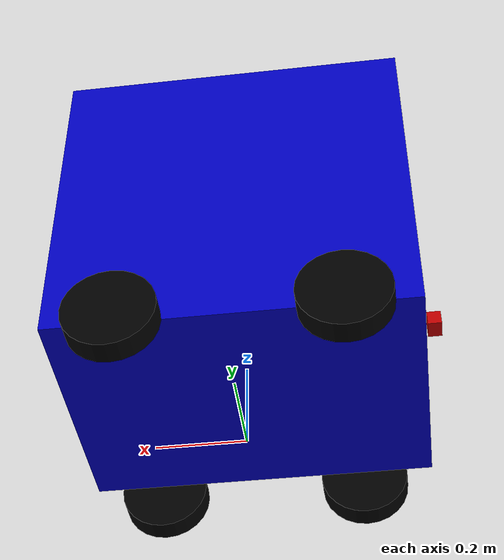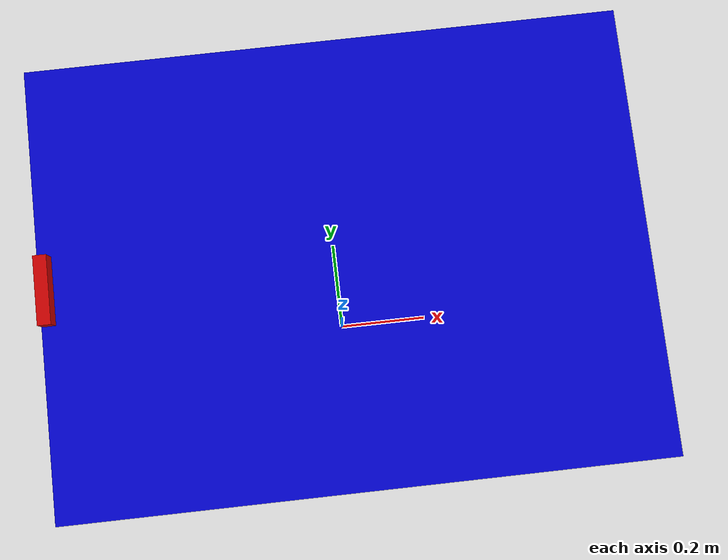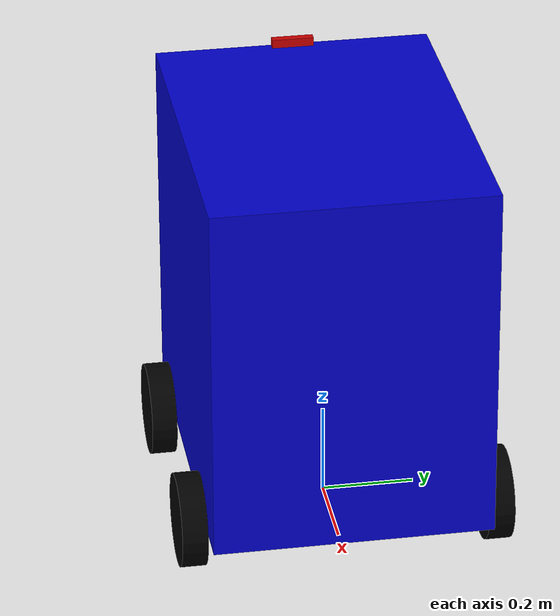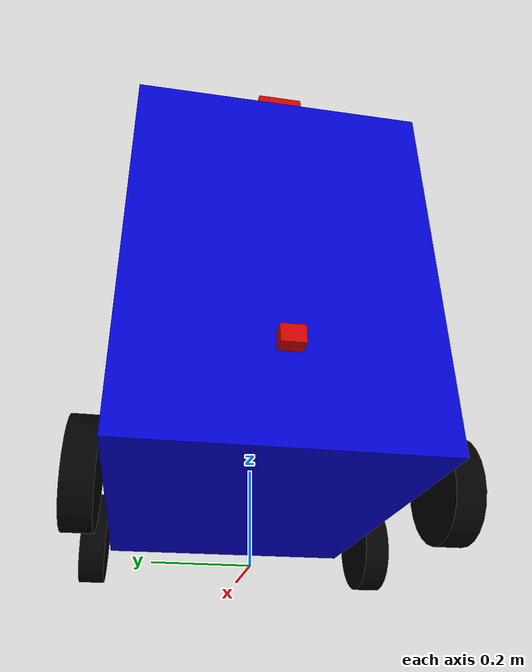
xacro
<?xml version="1.0"?>
<robot name="diferencial" xmlns:xacro="http://www.ros.org/wiki/xacro">
    <xacro:include filename="common_properties.xacro" />
    <xacro:include filename="robot_diferencial.xacro" />
    <xacro:include filename="controller.xacro" />
    <xacro:include filename="robot_diferencial_gazebo.xacro" />
    <xacro:include filename="camera.xacro" />
    <xacro:include filename="lidar.xacro" />

</robot>

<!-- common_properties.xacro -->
<robot xmlns:xacro="http://www.ros.org/wiki/xacro">

    <material name="black">
        <color rgba="0.0 0.0 0.0 1.0"/>
    </material>

    <material name="dark">
        <color rgba="0.3 0.3 0.3 1.0"/>
    </material>

    <material name="light_black">
        <color rgba="0.4 0.4 0.4 1.0"/>
    </material>

    <material name="blue">
        <color rgba="0.0 0.0 0.8 1.0"/>
    </material>

    <material name="green">
        <color rgba="0.0 0.8 0.0 1.0"/>
    </material>

    <material name="grey">
        <color rgba="0.5 0.5 0.5 1.0"/>
    </material>

    <material name="orange">
        <color rgba="1.0 0.4235 0.0392 1.0"/>
    </material>

    <material name="brown">
        <color rgba="0.8706 0.8118 0.7647 1.0"/>
    </material>

    <material name="red">
        <color rgba="0.8 0.0 0.0 1.0"/>
    </material>

    <material name="white">
        <color rgba="1.0 1.0 1.0 1.0"/>
    </material>

    <xacro:macro name="box_inertia" params="m l w h xyz rpy" >
        <inertial>
            <origin xyz="${xyz}" rpy="${rpy}"/>
            <mass value="${m}" />
            <inertia ixx="${(m/12) * (h*h + l*l)}" ixy="0" ixz="0"
                     iyy="${(m/12) * (w*w + l*l)}" iyz="0"
                     izz="${(m/12) * (w*w + h*h)}" />
        </inertial>
    </xacro:macro>

    <xacro:macro name="cylinder_inertia" params="m r h xyz rpy" >
        <inertial>
            <origin xyz="${xyz}" rpy="${rpy}"/>
            <mass value="${m}" />
            <inertia ixx="${(m/12) * (3*r*r + h*h)}" ixy="0" ixz="0"
                     iyy="${(m/12) * (3*r*r + h*h)}" iyz="0"
                     izz="${(m/2) * (r*r)}" />
        </inertial>
    </xacro:macro>

    <xacro:macro name="sphere_inertia" params="m r xyz rpy" >
        <inertial>
            <origin xyz="${xyz}" rpy="${rpy}"/>
            <mass value="${m}" />
            <inertia ixx="${(2/5) * m * r * r}" ixy="0" ixz="0"
                     iyy="${(2/5) * m * r * r}" iyz="0"
                     izz="${(2/5) * m * r * r}" />
        </inertial>
    </xacro:macro>

</robot>

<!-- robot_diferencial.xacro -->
<robot xmlns:xacro="http://www.ros.org/wiki/xacro">

  <link name="base_footprint"/>

  <link name="base_link">
    <visual>
      <origin xyz="0 0 0.4" rpy="${pi/2} 0 0"/>
      <geometry>
        <box size="0.8 0.79 0.6"/>
      </geometry>
      <material name="blue"/>
    </visual>

    <collision>
      <origin xyz="0 0 0.4" rpy="${pi/2} 0 0"/>
      <geometry>
        <box size="0.8 0.79 0.6"/>
      </geometry>
    </collision>

    <inertial>
      <origin xyz="0 0 0.4" rpy="${pi/2} 0 0"/>
      <mass value="18.33"/>
      <inertia ixx="2.277" ixy="0" ixz="0"
               iyy="2.559" iyz="0"
               izz="2.644" />
    </inertial>
  </link>

  <link name="Llanta_trasera_derecha_link">
    <visual>
      <origin xyz="0 -0.03 0" rpy="${pi/2} 0 0"/>
      <geometry>
        <cylinder radius="0.101" length="0.055" />
      </geometry>
      <material name="black"/>
    </visual>

    <collision>
      <origin xyz="0 -0.03 0" rpy="${pi/2} 0 0"/>
      <geometry>
        <cylinder radius="0.101" length="0.055" />
      </geometry>
    </collision>

    <inertial>
      <origin xyz="0 -0.03 0" rpy="${pi/2} 0 0"/>
      <mass value="1.150"/>
      <inertia ixx="0.0029" ixy="0" ixz="0"
               iyy="0.0029" iyz="0"
               izz="0.0042" />
    </inertial>
  </link>

  <link name="Llanta_trasera_izquierda_link">
    <visual>
      <origin xyz="0 0.03 0" rpy="${pi/2} 0 0"/>
      <geometry>
        <cylinder radius="0.101" length="0.055" />
      </geometry>
      <material name="black"/>
    </visual>

    <collision>
      <origin xyz="0 0.03 0" rpy="${pi/2} 0 0"/>
      <geometry>
        <cylinder radius="0.101" length="0.055" />
      </geometry>
    </collision>

    <inertial>
      <origin xyz="0 0.03 0" rpy="${pi/2} 0 0"/>
      <mass value="1.150"/>
      <inertia ixx="0.0029" ixy="0" ixz="0"
               iyy="0.0029" iyz="0"
               izz="0.0042" />
    </inertial>
  </link>

  <link name="Llanta_delantera_derecha_link">
    <visual>
      <origin xyz="0 -0.03 0" rpy="${pi/2} 0 0"/>
      <geometry>
        <cylinder radius="0.101" length="0.055" />
      </geometry>
      <material name="black"/>
    </visual>

    <collision>
      <origin xyz="0 -0.03 0" rpy="${pi/2} 0 0"/>
      <geometry>
        <cylinder radius="0.101" length="0.055" />
      </geometry>
    </collision>

    <inertial>
      <origin xyz="0 -0.03 0" rpy="${pi/2} 0 0"/>
      <mass value="0.974"/>
      <inertia ixx="0.0027" ixy="0" ixz="0"
               iyy="0.0027" iyz="0"
               izz="0.005" />
    </inertial>
  </link>

  <link name="Llanta_delantera_izquierda_link">
    <visual>
      <origin xyz="0 0.03 0" rpy="${pi/2} 0 0"/>
      <geometry>
        <cylinder radius="0.101" length="0.055" />
      </geometry>
      <material name="black"/>
    </visual>

    <collision>
      <origin xyz="0 0.03 0" rpy="${pi/2} 0 0"/>
      <geometry>
        <cylinder radius="0.101" length="0.055" />
      </geometry>
    </collision>

    <inertial>
      <origin xyz="0 0.03 0" rpy="${pi/2} 0 0"/>
      <mass value="0.974"/>
      <inertia ixx="0.0027" ixy="0" ixz="0"
               iyy="0.0027" iyz="0"
               izz="0.005" />
    </inertial>
  </link>

  <link name="Lidar_link">
    <visual>
      <origin xyz="0.02 0 0" rpy="${pi/2} 0 0"/>
      <geometry>
        <box size="0.032 0.035 0.046"/>
      </geometry>
      <material name="red"/>
    </visual>

    <collision>
      <origin xyz="0.02 0 0" rpy="${pi/2} 0 0"/>
      <geometry>
        <box size="0.032 0.035 0.046"/>
      </geometry>
    </collision>

    <inertial>
      <origin xyz="0.02 0 0" rpy="${pi/2} 0 0"/>
      <mass value="0.045"/>
      <inertia ixx="0.001" ixy="0" ixz="0"
               iyy="0.001" iyz="0"
               izz="0.001" />
    </inertial>
  </link>

  <link name="camara_link">
    <visual>
      <origin xyz="0.01 0 0" rpy="${pi/2} 0 0"/>
      <geometry>
        <box size="0.0175 0.028 0.091"/>
      </geometry>
      <material name="red"/>
    </visual>

    <collision>
      <origin xyz="0.01 0 0" rpy="${pi/2} 0 0"/>
      <geometry>
        <box size="0.0175 0.028 0.091"/>
      </geometry>
    </collision>

    <inertial>
      <origin xyz="0.01 0 0" rpy="${pi/2} 0 0"/>
      <mass value="0.020"/>
      <inertia ixx="0.001" ixy="0" ixz="0"
               iyy="0.001" iyz="0"
               izz="0.001" />
    </inertial>
  </link>

  <joint name="base_joint" type="fixed">
    <parent link="base_footprint"/>
    <child link="base_link" />
    <origin xyz="0 0 0.1" rpy="0 0 0"/>
  </joint>

  <joint name="base_llanta_trasera_derecha_joint" type="continuous">
    <parent link="base_link"/>
    <child link="Llanta_trasera_derecha_link" />
    <origin xyz="0.24 0.3 0" rpy="${pi} 0 0"/>
    <axis xyz="0 1 0" />
  </joint>

  <joint name="base_llanta_trasera_izquierda_joint" type="continuous">
    <parent link="base_link"/>
    <child link="Llanta_trasera_izquierda_link" />
    <origin xyz="0.24 -0.3 0" rpy="${pi} 0 0"/>
    <axis xyz="0 1 0" />
  </joint>

  <joint name="base_llanta_delantera_derecha_joint" type="fixed">
    <parent link="base_link"/>
    <child link="Llanta_delantera_derecha_link" />
    <origin xyz="-0.24 -0.3 0" rpy="0 0 0"/>
    <axis xyz="0 0 1" />
  </joint>

  <joint name="base_llanta_delantera_izquierda_joint" type="fixed">
    <parent link="base_link"/>
    <child link="Llanta_delantera_izquierda_link" />
    <origin xyz="-0.24 0.3 0" rpy="0 0 0"/>
    <axis xyz="0 0 1" />
  </joint>

  <joint name="base_Lidar_joint" type="fixed">
    <parent link="base_link"/>
    <child link="Lidar_link" />
    <origin xyz="-0.41 0 0.19" rpy="0 0 3.14"/>
  </joint>

  <joint name="base_camara_joint" type="fixed">
    <parent link="base_link"/>
    <child link="camara_link" />
    <origin xyz="-0.38 0 0.8" rpy="0 3.14 0"/>
  </joint>

</robot>
